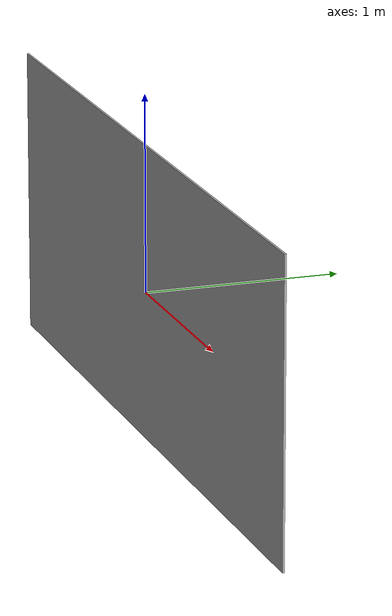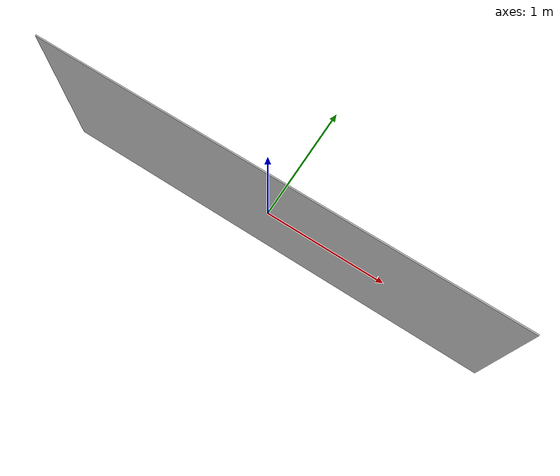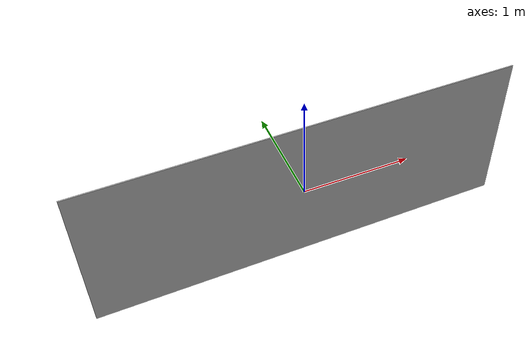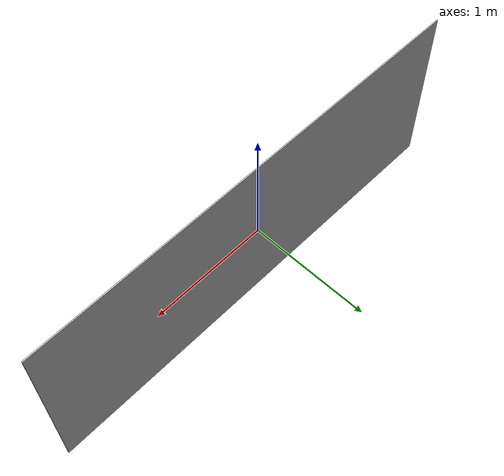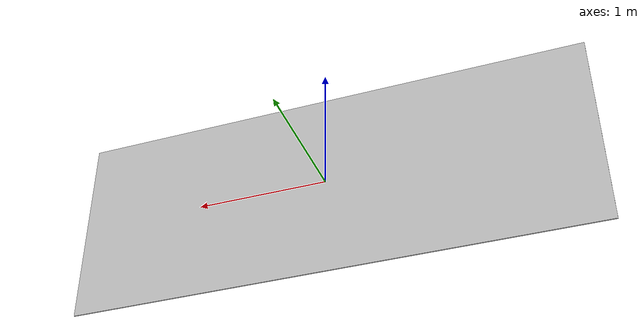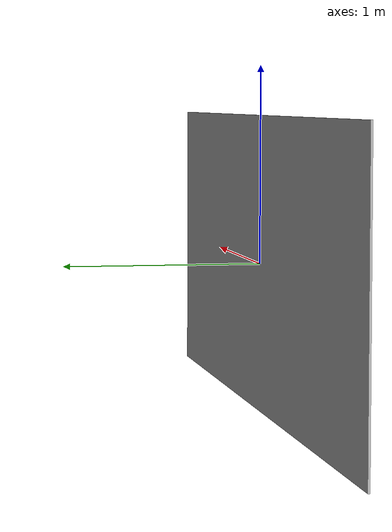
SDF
<?xml version="1.0"?>
<sdf version="1.6">
  <model name="pano_frame">
    <static>true</static>
    <link name="robot_link">
      <collision name="body_collision">
        <geometry>
          <box>
            <size>3.949 0.01 1.5</size>
          </box>
        </geometry>
      </collision>

      <visual name="body_visual">
        <cast_shadows>0</cast_shadows>
        <geometry>
          <box>
            <size>3.949 0.01 1.5</size>
          </box>
        </geometry>

        <material>
          <script>
           <uri>model://panoframe/materials/scripts/</uri>
           <uri>model://panoframe/materials/textures/</uri>
           <name>RepeatedTexture_pano</name>
          </script>
        </material>
      </visual>
    </link>
  </model>
</sdf>
